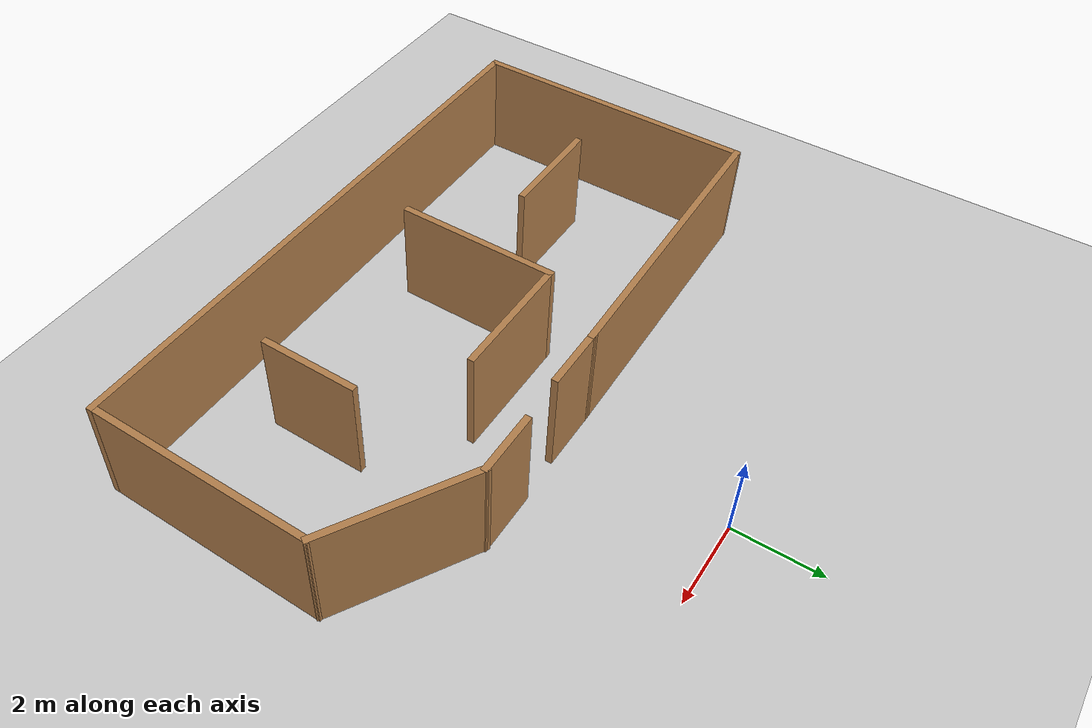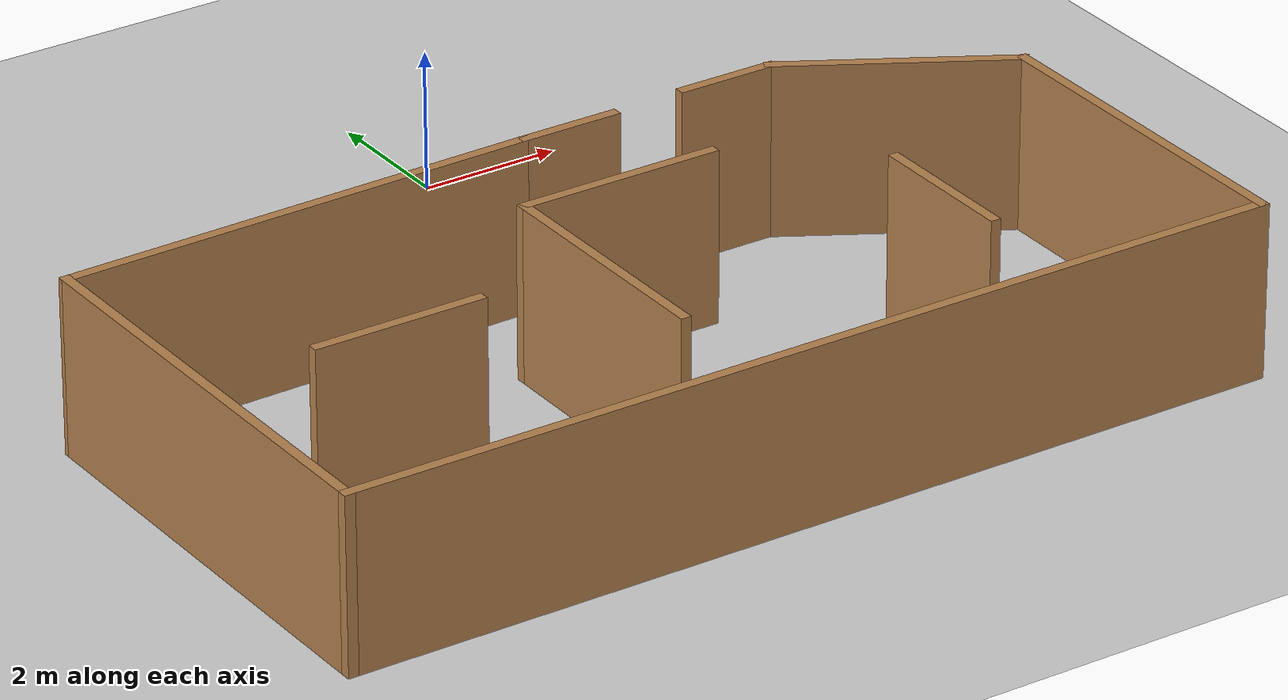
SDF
<sdf version="1.7">
 <world name="default">
  <light name="sun" type="directional">
   <pose>0 0 10 0 -0 0</pose>
   <diffuse>0.8 0.8 0.8 1</diffuse>
   <specular>0.2 0.2 0.2 1</specular>
   <attenuation>
    <range>1000</range>
    <constant>0.9</constant>
    <linear>0.01</linear>
    <quadratic>0.001</quadratic>
   </attenuation>
   <direction>-0.5 0.1 -0.9</direction>
   <spot><inner_angle>0</inner_angle><outer_angle>0</outer_angle><falloff>0</falloff></spot>
  </light>
  <model name="ground_plane">
   <static>1</static>
   <link name="link">
    <collision name="collision">
     <geometry><plane><normal>0 0 1</normal><size>100 100</size></plane></geometry>
     <surface>
      <contact><collide_bitmask>65535</collide_bitmask></contact>
      <friction><ode><mu>100</mu><mu2>50</mu2></ode></friction>
     </surface>
    </collision>
    <visual name="visual">
     <cast_shadows>0</cast_shadows>
     <geometry><plane><normal>0 0 1</normal><size>100 100</size></plane></geometry>
     <material>
      <script><uri>file://media/materials/scripts/gazebo.material</uri><name>Gazebo/Grey</name></script>
     </material>
    </visual>
   </link>
  </model>
  <gravity>0 0 -9.8</gravity>
  <magnetic_field>6e-06 2.3e-05 -4.2e-05</magnetic_field>
  <atmosphere type="adiabatic"/>
  <physics type="ode">
   <max_step_size>0.001</max_step_size>
   <real_time_factor>1</real_time_factor>
   <real_time_update_rate>1000</real_time_update_rate>
  </physics>
  <scene><ambient>0.4 0.4 0.4 1</ambient><background>0.7 0.7 0.7 1</background><shadows>1</shadows></scene>
  <audio><device>default</device></audio>
  <spherical_coordinates>
   <surface_model>EARTH_WGS84</surface_model>
   <latitude_deg>0</latitude_deg>
   <longitude_deg>0</longitude_deg>
   <elevation>0</elevation>
   <heading_deg>0</heading_deg>
  </spherical_coordinates>
  <model name="walls1">
   <pose>-0.8607 -5.57396 0 0 -0 0</pose>
   <link name="Wall_1">
    <collision name="Wall_1_Collision">
     <geometry><box><size>1.5 0.15 2.5</size></box></geometry>
     <pose>0 0 1.25 0 -0 0</pose>
    </collision>
    <visual name="Wall_1_Visual">
     <pose>0 0 1.25 0 -0 0</pose>
     <geometry><box><size>1.5 0.15 2.5</size></box></geometry>
     <material>
      <script><uri>file://media/materials/scripts/gazebo.material</uri><name>Gazebo/Wood</name></script>
      <ambient>1 1 1 1</ambient>
     </material>
     <meta><layer>0</layer></meta>
    </visual>
    <pose>0.720766 1.86 0 0 -0 0</pose>
   </link>
   <link name="Wall_10">
    <collision name="Wall_10_Collision">
     <geometry><box><size>7.00995 0.15 2.5</size></box></geometry>
     <pose>0 0 1.25 0 -0 0</pose>
    </collision>
    <visual name="Wall_10_Visual">
     <pose>0 0 1.25 0 -0 0</pose>
     <geometry><box><size>7.00995 0.15 2.5</size></box></geometry>
     <material>
      <script><uri>file://media/materials/scripts/gazebo.material</uri><name>Gazebo/Wood</name></script>
      <ambient>1 1 1 1</ambient>
     </material>
     <meta><layer>0</layer></meta>
    </visual>
    <pose>-3.38364 1.7975 0 0 -0 0.018223</pose>
   </link>
   <link name="Wall_13">
    <collision name="Wall_13_Collision">
     <geometry><box><size>3 0.15 2.5</size></box></geometry>
     <pose>0 0 1.25 0 -0 0</pose>
    </collision>
    <visual name="Wall_13_Visual">
     <pose>0 0 1.25 0 -0 0</pose>
     <geometry><box><size>3 0.15 2.5</size></box></geometry>
     <material>
      <script><uri>file://media/materials/scripts/gazebo.material</uri><name>Gazebo/Wood</name></script>
      <ambient>1 1 1 1</ambient>
     </material>
     <meta><layer>0</layer></meta>
    </visual>
    <pose>0.424034 0.261416 0 0 -0 3.14159</pose>
   </link>
   <link name="Wall_14">
    <collision name="Wall_14_Collision">
     <geometry><box><size>3.75 0.15 2.5</size></box></geometry>
     <pose>0 0 1.25 0 -0 0</pose>
    </collision>
    <visual name="Wall_14_Visual">
     <pose>0 0 1.25 0 -0 0</pose>
     <geometry><box><size>3.75 0.15 2.5</size></box></geometry>
     <material>
      <script><uri>file://media/materials/scripts/gazebo.material</uri><name>Gazebo/Wood</name></script>
      <ambient>1 1 1 1</ambient>
     </material>
     <meta><layer>0</layer></meta>
    </visual>
    <pose>-1.00097 -1.53858 0 0 -0 -1.5708</pose>
   </link>
   <link name="Wall_16">
    <collision name="Wall_16_Collision">
     <geometry><box><size>2.5 0.15 2.5</size></box></geometry>
     <pose>0 0 1.25 0 -0 0</pose>
    </collision>
    <visual name="Wall_16_Visual">
     <pose>0 0 1.25 0 -0 0</pose>
     <geometry><box><size>2.5 0.15 2.5</size></box></geometry>
     <material>
      <script><uri>file://media/materials/scripts/gazebo.material</uri><name>Gazebo/Wood</name></script>
      <ambient>1 1 1 1</ambient>
     </material>
     <meta><layer>0</layer></meta>
    </visual>
    <pose>-3.9956 -1.52869 0 0 -0 0</pose>
   </link>
   <link name="Wall_18">
    <collision name="Wall_18_Collision">
     <geometry><box><size>2.25 0.15 2.5</size></box></geometry>
     <pose>0 0 1.25 0 -0 0</pose>
    </collision>
    <visual name="Wall_18_Visual">
     <pose>0 0 1.25 0 -0 0</pose>
     <geometry><box><size>2.25 0.15 2.5</size></box></geometry>
     <material>
      <script><uri>file://media/materials/scripts/gazebo.material</uri><name>Gazebo/Wood</name></script>
      <ambient>1 1 1 1</ambient>
     </material>
     <meta><layer>0</layer></meta>
    </visual>
    <pose>3.7196 -2.25687 0 0 -0 -1.5708</pose>
   </link>
   <link name="Wall_3">
    <collision name="Wall_3_Collision">
     <geometry><box><size>1.5 0.15 2.5</size></box></geometry>
     <pose>0 0 1.25 0 -0 0</pose>
    </collision>
    <visual name="Wall_3_Visual">
     <pose>0 0 1.25 0 -0 0</pose>
     <geometry><box><size>1.5 0.15 2.5</size></box></geometry>
     <material>
      <script><uri>file://media/materials/scripts/gazebo.material</uri><name>Gazebo/Wood</name></script>
      <ambient>1 1 1 1</ambient>
     </material>
     <meta><layer>0</layer></meta>
    </visual>
    <pose>3.21077 1.91 0 0 -0 0</pose>
   </link>
   <link name="Wall_4">
    <collision name="Wall_4_Collision">
     <geometry><box><size>3.5 0.15 2.5</size></box></geometry>
     <pose>0 0 1.25 0 -0 0</pose>
    </collision>
    <visual name="Wall_4_Visual">
     <pose>0 0 1.25 0 -0 0</pose>
     <geometry><box><size>3.5 0.15 2.5</size></box></geometry>
     <material>
      <script><uri>file://media/materials/scripts/gazebo.material</uri><name>Gazebo/Wood</name></script>
      <ambient>1 1 1 1</ambient>
     </material>
     <meta><layer>0</layer></meta>
    </visual>
    <pose>5.33636 1.0725 0 0 -0 -0.523599</pose>
   </link>
   <link name="Wall_7">
    <collision name="Wall_7_Collision">
     <geometry><box><size>5.25 0.15 2.5</size></box></geometry>
     <pose>0 0 1.25 0 -0 0</pose>
    </collision>
    <visual name="Wall_7_Visual">
     <pose>0 0 1.25 0 -0 0</pose>
     <geometry><box><size>5.25 0.15 2.5</size></box></geometry>
     <material>
      <script><uri>file://media/materials/scripts/gazebo.material</uri><name>Gazebo/Wood</name></script>
      <ambient>1 1 1 1</ambient>
     </material>
     <meta><layer>0</layer></meta>
    </visual>
    <pose>6.78695 -2.315 0 0 -0 -1.5708</pose>
   </link>
   <link name="Wall_8">
    <collision name="Wall_8_Collision">
     <geometry><box><size>13.75 0.15 2.5</size></box></geometry>
     <pose>0 0 1.25 0 -0 0</pose>
    </collision>
    <visual name="Wall_8_Visual">
     <pose>0 0 1.25 0 -0 0</pose>
     <geometry><box><size>13.75 0.15 2.5</size></box></geometry>
     <material>
      <script><uri>file://media/materials/scripts/gazebo.material</uri><name>Gazebo/Wood</name></script>
      <ambient>1 1 1 1</ambient>
     </material>
     <meta><layer>0</layer></meta>
    </visual>
    <pose>-0.013049 -4.865 0 0 -0 3.14159</pose>
   </link>
   <link name="Wall_9">
    <collision name="Wall_9_Collision">
     <geometry><box><size>6.75 0.15 2.5</size></box></geometry>
     <pose>0 0 1.25 0 -0 0</pose>
    </collision>
    <visual name="Wall_9_Visual">
     <pose>0 0 1.25 0 -0 0</pose>
     <geometry><box><size>6.75 0.15 2.5</size></box></geometry>
     <material>
      <script><uri>file://media/materials/scripts/gazebo.material</uri><name>Gazebo/Wood</name></script>
      <ambient>1 1 1 1</ambient>
     </material>
     <meta><layer>0</layer></meta>
    </visual>
    <pose>-6.81305 -1.565 0 0 -0 1.5708</pose>
   </link>
   <static>1</static>
  </model>
 </world>
</sdf>
